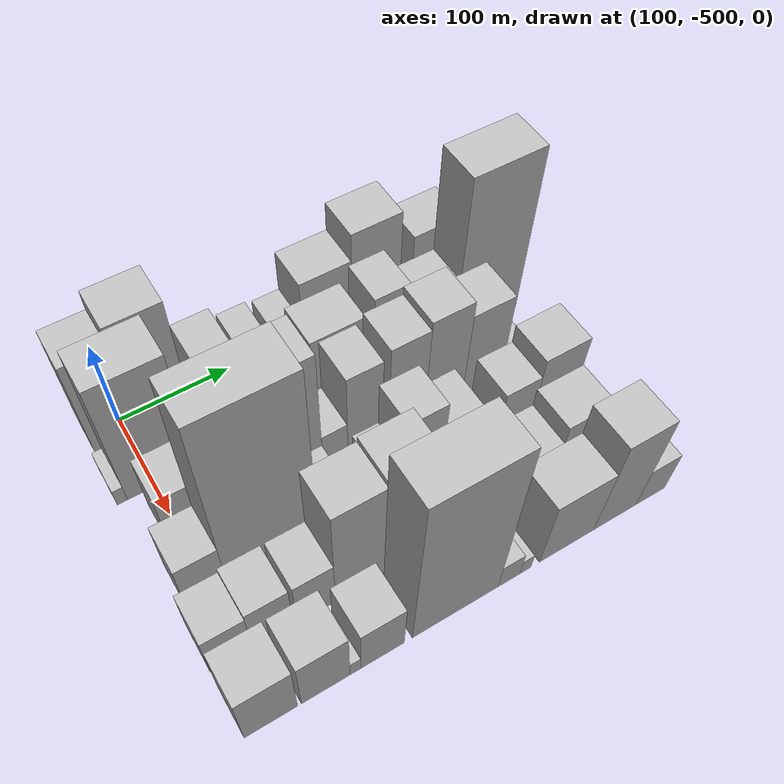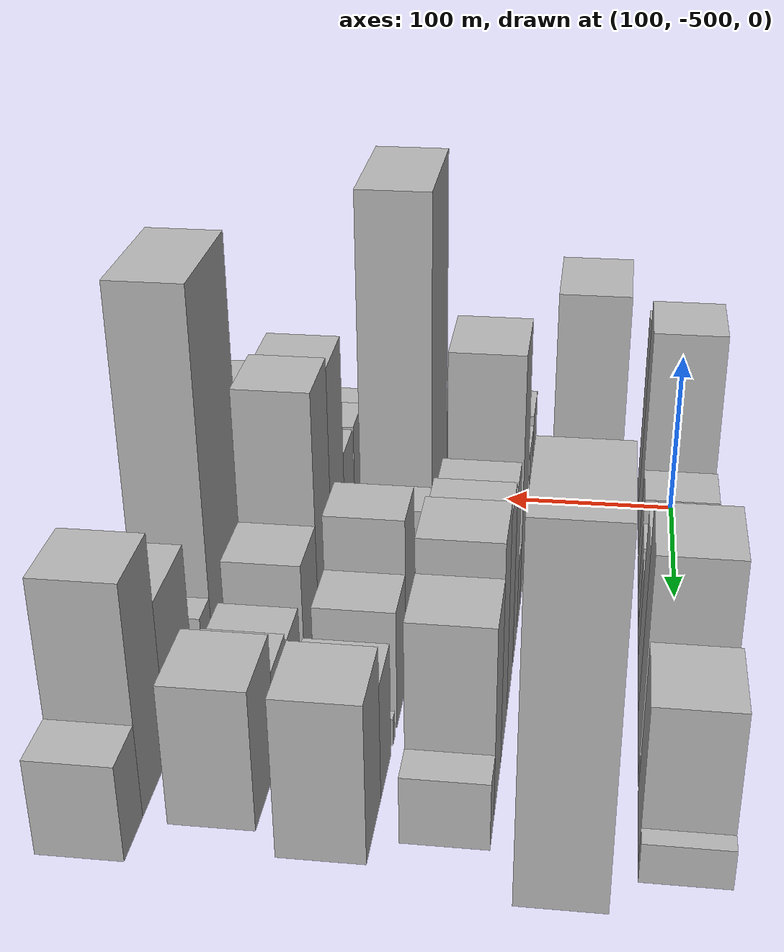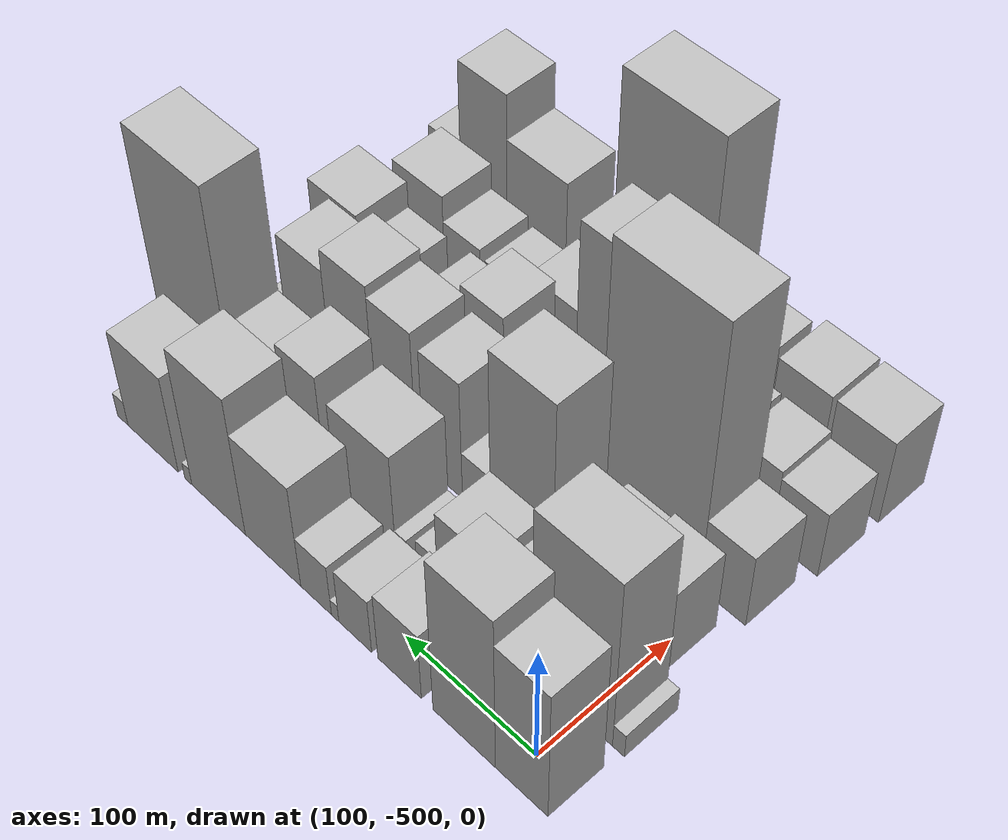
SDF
<sdf version="1.6">
 <world name="default">
  <model name="building_10">
   <static>1</static>
   <pose>100.0000 -509.3319 0 0.000000 0.000000 0.000000</pose>
   <link name="link">
    <pose>0 0 58.50 0 0 0</pose>
    <collision name="collision"><geometry><box><size>40.0000 38.4094 117.0000</size></box></geometry></collision>
    <visual name="visual">
     <cast_shadows>0</cast_shadows>
     <geometry><box><size>40.0000 38.4094 117.0000</size></box></geometry>
     <material>
      <script>
       <uri>model://HANNAS_wall/materials/scripts</uri>
       <uri>model://HANNAS_wall/materials/textures</uri>
       <name>vrc/HANNAS_wall</name>
      </script>
     </material>
    </visual>
   </link>
  </model>
  <model name="building_11">
   <static>1</static>
   <pose>100.0000 -466.4925 0 0.000000 0.000000 0.000000</pose>
   <link name="link">
    <pose>0 0 69.00 0 0 0</pose>
    <collision name="collision"><geometry><box><size>40.0000 47.2694 138.0000</size></box></geometry></collision>
    <visual name="visual">
     <cast_shadows>0</cast_shadows>
     <geometry><box><size>40.0000 47.2694 138.0000</size></box></geometry>
     <material>
      <script>
       <uri>model://HANNAS_wall/materials/scripts</uri>
       <uri>model://HANNAS_wall/materials/textures</uri>
       <name>vrc/HANNAS_wall</name>
      </script>
     </material>
    </visual>
   </link>
  </model>
  <model name="building_12">
   <static>1</static>
   <pose>100.0000 -416.6845 0 0.000000 0.000000 0.000000</pose>
   <link name="link">
    <pose>0 0 30.00 0 0 0</pose>
    <collision name="collision"><geometry><box><size>40.0000 34.3465 60.0000</size></box></geometry></collision>
    <visual name="visual">
     <cast_shadows>0</cast_shadows>
     <geometry><box><size>40.0000 34.3465 60.0000</size></box></geometry>
     <material>
      <script>
       <uri>model://HANNAS_wall/materials/scripts</uri>
       <uri>model://HANNAS_wall/materials/textures</uri>
       <name>vrc/HANNAS_wall</name>
      </script>
     </material>
    </visual>
   </link>
  </model>
  <model name="building_13">
   <static>1</static>
   <pose>100.0000 -381.1827 0 0.000000 0.000000 0.000000</pose>
   <link name="link">
    <pose>0 0 24.00 0 0 0</pose>
    <collision name="collision"><geometry><box><size>40.0000 26.6572 48.0000</size></box></geometry></collision>
    <visual name="visual">
     <cast_shadows>0</cast_shadows>
     <geometry><box><size>40.0000 26.6572 48.0000</size></box></geometry>
     <material>
      <script>
       <uri>model://HANNAS_wall/materials/scripts</uri>
       <uri>model://HANNAS_wall/materials/textures</uri>
       <name>vrc/HANNAS_wall</name>
      </script>
     </material>
    </visual>
   </link>
  </model>
  <model name="building_14">
   <static>1</static>
   <pose>100.0000 -364.8093 0 0.000000 0.000000 0.000000</pose>
   <link name="link">
    <pose>0 0 7.50 0 0 0</pose>
    <collision name="collision"><geometry><box><size>40.0000 6.0895 15.0000</size></box></geometry></collision>
    <visual name="visual">
     <cast_shadows>0</cast_shadows>
     <geometry><box><size>40.0000 6.0895 15.0000</size></box></geometry>
     <material>
      <script>
       <uri>model://HANNAS_wall/materials/scripts</uri>
       <uri>model://HANNAS_wall/materials/textures</uri>
       <name>vrc/HANNAS_wall</name>
      </script>
     </material>
    </visual>
   </link>
  </model>
  <model name="building_15">
   <static>1</static>
   <pose>100.0000 -348.9522 0 0.000000 0.000000 0.000000</pose>
   <link name="link">
    <pose>0 0 22.50 0 0 0</pose>
    <collision name="collision"><geometry><box><size>40.0000 25.6248 45.0000</size></box></geometry></collision>
    <visual name="visual">
     <cast_shadows>0</cast_shadows>
     <geometry><box><size>40.0000 25.6248 45.0000</size></box></geometry>
     <material>
      <script>
       <uri>model://HANNAS_wall/materials/scripts</uri>
       <uri>model://HANNAS_wall/materials/textures</uri>
       <name>vrc/HANNAS_wall</name>
      </script>
     </material>
    </visual>
   </link>
  </model>
  <model name="building_16">
   <static>1</static>
   <pose>100.0000 -312.2584 0 0.000000 0.000000 0.000000</pose>
   <link name="link">
    <pose>0 0 45.00 0 0 0</pose>
    <collision name="collision"><geometry><box><size>40.0000 47.7629 90.0000</size></box></geometry></collision>
    <visual name="visual">
     <cast_shadows>0</cast_shadows>
     <geometry><box><size>40.0000 47.7629 90.0000</size></box></geometry>
     <material>
      <script>
       <uri>model://HANNAS_wall/materials/scripts</uri>
       <uri>model://HANNAS_wall/materials/textures</uri>
       <name>vrc/HANNAS_wall</name>
      </script>
     </material>
    </visual>
   </link>
  </model>
  <model name="building_17">
   <static>1</static>
   <pose>100.0000 -264.4707 0 0.000000 0.000000 0.000000</pose>
   <link name="link">
    <pose>0 0 60.00 0 0 0</pose>
    <collision name="collision"><geometry><box><size>40.0000 47.8126 120.0000</size></box></geometry></collision>
    <visual name="visual">
     <cast_shadows>0</cast_shadows>
     <geometry><box><size>40.0000 47.8126 120.0000</size></box></geometry>
     <material>
      <script>
       <uri>model://HANNAS_wall/materials/scripts</uri>
       <uri>model://HANNAS_wall/materials/textures</uri>
       <name>vrc/HANNAS_wall</name>
      </script>
     </material>
    </visual>
   </link>
  </model>
  <model name="building_18">
   <static>1</static>
   <pose>100.0000 -237.3521 0 0.000000 0.000000 0.000000</pose>
   <link name="link">
    <pose>0 0 7.50 0 0 0</pose>
    <collision name="collision"><geometry><box><size>40.0000 6.4245 15.0000</size></box></geometry></collision>
    <visual name="visual">
     <cast_shadows>0</cast_shadows>
     <geometry><box><size>40.0000 6.4245 15.0000</size></box></geometry>
     <material>
      <script>
       <uri>model://HANNAS_wall/materials/scripts</uri>
       <uri>model://HANNAS_wall/materials/textures</uri>
       <name>vrc/HANNAS_wall</name>
      </script>
     </material>
    </visual>
   </link>
  </model>
  <model name="building_19">
   <static>1</static>
   <pose>100.0000 -204.6399 0 0.000000 0.000000 0.000000</pose>
   <link name="link">
    <pose>0 0 42.00 0 0 0</pose>
    <collision name="collision"><geometry><box><size>40.0000 46.9999 84.0000</size></box></geometry></collision>
    <visual name="visual">
     <cast_shadows>0</cast_shadows>
     <geometry><box><size>40.0000 46.9999 84.0000</size></box></geometry>
     <material>
      <script>
       <uri>model://HANNAS_wall/materials/scripts</uri>
       <uri>model://HANNAS_wall/materials/textures</uri>
       <name>vrc/HANNAS_wall</name>
      </script>
     </material>
    </visual>
   </link>
  </model>
  <model name="building_20">
   <static>1</static>
   <pose>100.0000 -176.0807 0 0.000000 0.000000 0.000000</pose>
   <link name="link">
    <pose>0 0 10.50 0 0 0</pose>
    <collision name="collision"><geometry><box><size>40.0000 10.1186 21.0000</size></box></geometry></collision>
    <visual name="visual">
     <cast_shadows>0</cast_shadows>
     <geometry><box><size>40.0000 10.1186 21.0000</size></box></geometry>
     <material>
      <script>
       <uri>model://HANNAS_wall/materials/scripts</uri>
       <uri>model://HANNAS_wall/materials/textures</uri>
       <name>vrc/HANNAS_wall</name>
      </script>
     </material>
    </visual>
   </link>
  </model>
  <model name="building_61">
   <static>1</static>
   <pose>152.0000 -527.4725 0 0.000000 0.000000 0.000000</pose>
   <link name="link">
    <pose>0 0 10.50 0 0 0</pose>
    <collision name="collision"><geometry><box><size>40.0000 8.6587 21.0000</size></box></geometry></collision>
    <visual name="visual">
     <cast_shadows>0</cast_shadows>
     <geometry><box><size>40.0000 8.6587 21.0000</size></box></geometry>
     <material>
      <script>
       <uri>model://HANNAS_wall/materials/scripts</uri>
       <uri>model://HANNAS_wall/materials/textures</uri>
       <name>vrc/HANNAS_wall</name>
      </script>
     </material>
    </visual>
   </link>
  </model>
  <model name="building_62">
   <static>1</static>
   <pose>152.0000 -493.3518 0 0.000000 0.000000 0.000000</pose>
   <link name="link">
    <pose>0 0 75.00 0 0 0</pose>
    <collision name="collision"><geometry><box><size>40.0000 59.5827 150.0000</size></box></geometry></collision>
    <visual name="visual">
     <cast_shadows>0</cast_shadows>
     <geometry><box><size>40.0000 59.5827 150.0000</size></box></geometry>
     <material>
      <script>
       <uri>model://HANNAS_wall/materials/scripts</uri>
       <uri>model://HANNAS_wall/materials/textures</uri>
       <name>vrc/HANNAS_wall</name>
      </script>
     </material>
    </visual>
   </link>
  </model>
  <model name="building_63">
   <static>1</static>
   <pose>152.0000 -447.5035 0 0.000000 0.000000 0.000000</pose>
   <link name="link">
    <pose>0 0 30.00 0 0 0</pose>
    <collision name="collision"><geometry><box><size>40.0000 32.1139 60.0000</size></box></geometry></collision>
    <visual name="visual">
     <cast_shadows>0</cast_shadows>
     <geometry><box><size>40.0000 32.1139 60.0000</size></box></geometry>
     <material>
      <script>
       <uri>model://HANNAS_wall/materials/scripts</uri>
       <uri>model://HANNAS_wall/materials/textures</uri>
       <name>vrc/HANNAS_wall</name>
      </script>
     </material>
    </visual>
   </link>
  </model>
  <model name="building_64">
   <static>1</static>
   <pose>152.0000 -410.9011 0 0.000000 0.000000 0.000000</pose>
   <link name="link">
    <pose>0 0 36.00 0 0 0</pose>
    <collision name="collision"><geometry><box><size>40.0000 41.0910 72.0000</size></box></geometry></collision>
    <visual name="visual">
     <cast_shadows>0</cast_shadows>
     <geometry><box><size>40.0000 41.0910 72.0000</size></box></geometry>
     <material>
      <script>
       <uri>model://HANNAS_wall/materials/scripts</uri>
       <uri>model://HANNAS_wall/materials/textures</uri>
       <name>vrc/HANNAS_wall</name>
      </script>
     </material>
    </visual>
   </link>
  </model>
  <model name="building_65">
   <static>1</static>
   <pose>152.0000 -381.8194 0 0.000000 0.000000 0.000000</pose>
   <link name="link">
    <pose>0 0 15.00 0 0 0</pose>
    <collision name="collision"><geometry><box><size>40.0000 17.0725 30.0000</size></box></geometry></collision>
    <visual name="visual">
     <cast_shadows>0</cast_shadows>
     <geometry><box><size>40.0000 17.0725 30.0000</size></box></geometry>
     <material>
      <script>
       <uri>model://HANNAS_wall/materials/scripts</uri>
       <uri>model://HANNAS_wall/materials/textures</uri>
       <name>vrc/HANNAS_wall</name>
      </script>
     </material>
    </visual>
   </link>
  </model>
  <model name="building_66">
   <static>1</static>
   <pose>152.0000 -360.5443 0 0.000000 0.000000 0.000000</pose>
   <link name="link">
    <pose>0 0 10.50 0 0 0</pose>
    <collision name="collision"><geometry><box><size>40.0000 9.4777 21.0000</size></box></geometry></collision>
    <visual name="visual">
     <cast_shadows>0</cast_shadows>
     <geometry><box><size>40.0000 9.4777 21.0000</size></box></geometry>
     <material>
      <script>
       <uri>model://HANNAS_wall/materials/scripts</uri>
       <uri>model://HANNAS_wall/materials/textures</uri>
       <name>vrc/HANNAS_wall</name>
      </script>
     </material>
    </visual>
   </link>
  </model>
  <model name="building_67">
   <static>1</static>
   <pose>152.0000 -330.9661 0 0.000000 0.000000 0.000000</pose>
   <link name="link">
    <pose>0 0 43.50 0 0 0</pose>
    <collision name="collision"><geometry><box><size>40.0000 49.6787 87.0000</size></box></geometry></collision>
    <visual name="visual">
     <cast_shadows>0</cast_shadows>
     <geometry><box><size>40.0000 49.6787 87.0000</size></box></geometry>
     <material>
      <script>
       <uri>model://HANNAS_wall/materials/scripts</uri>
       <uri>model://HANNAS_wall/materials/textures</uri>
       <name>vrc/HANNAS_wall</name>
      </script>
     </material>
    </visual>
   </link>
  </model>
  <model name="building_68">
   <static>1</static>
   <pose>152.0000 -281.6958 0 0.000000 0.000000 0.000000</pose>
   <link name="link">
    <pose>0 0 51.00 0 0 0</pose>
    <collision name="collision"><geometry><box><size>40.0000 32.8619 102.0000</size></box></geometry></collision>
    <visual name="visual">
     <cast_shadows>0</cast_shadows>
     <geometry><box><size>40.0000 32.8619 102.0000</size></box></geometry>
     <material>
      <script>
       <uri>model://HANNAS_wall/materials/scripts</uri>
       <uri>model://HANNAS_wall/materials/textures</uri>
       <name>vrc/HANNAS_wall</name>
      </script>
     </material>
    </visual>
   </link>
  </model>
  <model name="building_69">
   <static>1</static>
   <pose>152.0000 -238.5406 0 0.000000 0.000000 0.000000</pose>
   <link name="link">
    <pose>0 0 37.50 0 0 0</pose>
    <collision name="collision"><geometry><box><size>40.0000 43.4485 75.0000</size></box></geometry></collision>
    <visual name="visual">
     <cast_shadows>0</cast_shadows>
     <geometry><box><size>40.0000 43.4485 75.0000</size></box></geometry>
     <material>
      <script>
       <uri>model://HANNAS_wall/materials/scripts</uri>
       <uri>model://HANNAS_wall/materials/textures</uri>
       <name>vrc/HANNAS_wall</name>
      </script>
     </material>
    </visual>
   </link>
  </model>
  <model name="building_70">
   <static>1</static>
   <pose>152.0000 -183.7297 0 0.000000 0.000000 0.000000</pose>
   <link name="link">
    <pose>0 0 93.00 0 0 0</pose>
    <collision name="collision"><geometry><box><size>40.0000 66.1733 186.0000</size></box></geometry></collision>
    <visual name="visual">
     <cast_shadows>0</cast_shadows>
     <geometry><box><size>40.0000 66.1733 186.0000</size></box></geometry>
     <material>
      <script>
       <uri>model://HANNAS_wall/materials/scripts</uri>
       <uri>model://HANNAS_wall/materials/textures</uri>
       <name>vrc/HANNAS_wall</name>
      </script>
     </material>
    </visual>
   </link>
  </model>
  <model name="building_114">
   <static>1</static>
   <pose>204.0000 -493.3731 0 0.000000 0.000000 0.000000</pose>
   <link name="link">
    <pose>0 0 34.50 0 0 0</pose>
    <collision name="collision"><geometry><box><size>40.0000 35.5276 69.0000</size></box></geometry></collision>
    <visual name="visual">
     <cast_shadows>0</cast_shadows>
     <geometry><box><size>40.0000 35.5276 69.0000</size></box></geometry>
     <material>
      <script>
       <uri>model://HANNAS_wall/materials/scripts</uri>
       <uri>model://HANNAS_wall/materials/textures</uri>
       <name>vrc/HANNAS_wall</name>
      </script>
     </material>
    </visual>
   </link>
  </model>
  <model name="building_115">
   <static>1</static>
   <pose>204.0000 -458.9042 0 0.000000 0.000000 0.000000</pose>
   <link name="link">
    <pose>0 0 31.50 0 0 0</pose>
    <collision name="collision"><geometry><box><size>40.0000 33.4101 63.0000</size></box></geometry></collision>
    <visual name="visual">
     <cast_shadows>0</cast_shadows>
     <geometry><box><size>40.0000 33.4101 63.0000</size></box></geometry>
     <material>
      <script>
       <uri>model://HANNAS_wall/materials/scripts</uri>
       <uri>model://HANNAS_wall/materials/textures</uri>
       <name>vrc/HANNAS_wall</name>
      </script>
     </material>
    </visual>
   </link>
  </model>
  <model name="building_116">
   <static>1</static>
   <pose>204.0000 -429.9356 0 0.000000 0.000000 0.000000</pose>
   <link name="link">
    <pose>0 0 7.50 0 0 0</pose>
    <collision name="collision"><geometry><box><size>40.0000 6.5273 15.0000</size></box></geometry></collision>
    <visual name="visual">
     <cast_shadows>0</cast_shadows>
     <geometry><box><size>40.0000 6.5273 15.0000</size></box></geometry>
     <material>
      <script>
       <uri>model://HANNAS_wall/materials/scripts</uri>
       <uri>model://HANNAS_wall/materials/textures</uri>
       <name>vrc/HANNAS_wall</name>
      </script>
     </material>
    </visual>
   </link>
  </model>
  <model name="building_117">
   <static>1</static>
   <pose>204.0000 -401.9524 0 0.000000 0.000000 0.000000</pose>
   <link name="link">
    <pose>0 0 75.00 0 0 0</pose>
    <collision name="collision"><geometry><box><size>40.0000 49.4390 150.0000</size></box></geometry></collision>
    <visual name="visual">
     <cast_shadows>0</cast_shadows>
     <geometry><box><size>40.0000 49.4390 150.0000</size></box></geometry>
     <material>
      <script>
       <uri>model://HANNAS_wall/materials/scripts</uri>
       <uri>model://HANNAS_wall/materials/textures</uri>
       <name>vrc/HANNAS_wall</name>
      </script>
     </material>
    </visual>
   </link>
  </model>
  <model name="building_118">
   <static>1</static>
   <pose>204.0000 -365.7311 0 0.000000 0.000000 0.000000</pose>
   <link name="link">
    <pose>0 0 21.00 0 0 0</pose>
    <collision name="collision"><geometry><box><size>40.0000 23.0037 42.0000</size></box></geometry></collision>
    <visual name="visual">
     <cast_shadows>0</cast_shadows>
     <geometry><box><size>40.0000 23.0037 42.0000</size></box></geometry>
     <material>
      <script>
       <uri>model://HANNAS_wall/materials/scripts</uri>
       <uri>model://HANNAS_wall/materials/textures</uri>
       <name>vrc/HANNAS_wall</name>
      </script>
     </material>
    </visual>
   </link>
  </model>
  <model name="building_119">
   <static>1</static>
   <pose>204.0000 -338.1426 0 0.000000 0.000000 0.000000</pose>
   <link name="link">
    <pose>0 0 51.00 0 0 0</pose>
    <collision name="collision"><geometry><box><size>40.0000 32.1732 102.0000</size></box></geometry></collision>
    <visual name="visual">
     <cast_shadows>0</cast_shadows>
     <geometry><box><size>40.0000 32.1732 102.0000</size></box></geometry>
     <material>
      <script>
       <uri>model://HANNAS_wall/materials/scripts</uri>
       <uri>model://HANNAS_wall/materials/textures</uri>
       <name>vrc/HANNAS_wall</name>
      </script>
     </material>
    </visual>
   </link>
  </model>
  <model name="building_120">
   <static>1</static>
   <pose>204.0000 -298.5070 0 0.000000 0.000000 0.000000</pose>
   <link name="link">
    <pose>0 0 55.50 0 0 0</pose>
    <collision name="collision"><geometry><box><size>40.0000 35.0981 111.0000</size></box></geometry></collision>
    <visual name="visual">
     <cast_shadows>0</cast_shadows>
     <geometry><box><size>40.0000 35.0981 111.0000</size></box></geometry>
     <material>
      <script>
       <uri>model://HANNAS_wall/materials/scripts</uri>
       <uri>model://HANNAS_wall/materials/textures</uri>
       <name>vrc/HANNAS_wall</name>
      </script>
     </material>
    </visual>
   </link>
  </model>
  <model name="building_121">
   <static>1</static>
   <pose>204.0000 -261.9340 0 0.000000 0.000000 0.000000</pose>
   <link name="link">
    <pose>0 0 60.00 0 0 0</pose>
    <collision name="collision"><geometry><box><size>40.0000 38.0480 120.0000</size></box></geometry></collision>
    <visual name="visual">
     <cast_shadows>0</cast_shadows>
     <geometry><box><size>40.0000 38.0480 120.0000</size></box></geometry>
     <material>
      <script>
       <uri>model://HANNAS_wall/materials/scripts</uri>
       <uri>model://HANNAS_wall/materials/textures</uri>
       <name>vrc/HANNAS_wall</name>
      </script>
     </material>
    </visual>
   </link>
  </model>
  <model name="building_122">
   <static>1</static>
   <pose>204.0000 -223.1925 0 0.000000 0.000000 0.000000</pose>
   <link name="link">
    <pose>0 0 51.00 0 0 0</pose>
    <collision name="collision"><geometry><box><size>40.0000 39.4350 102.0000</size></box></geometry></collision>
    <visual name="visual">
     <cast_shadows>0</cast_shadows>
     <geometry><box><size>40.0000 39.4350 102.0000</size></box></geometry>
     <material>
      <script>
       <uri>model://HANNAS_wall/materials/scripts</uri>
       <uri>model://HANNAS_wall/materials/textures</uri>
       <name>vrc/HANNAS_wall</name>
      </script>
     </material>
    </visual>
   </link>
  </model>
  <model name="building_123">
   <static>1</static>
   <pose>204.0000 -193.3924 0 0.000000 0.000000 0.000000</pose>
   <link name="link">
    <pose>0 0 18.00 0 0 0</pose>
    <collision name="collision"><geometry><box><size>40.0000 20.1651 36.0000</size></box></geometry></collision>
    <visual name="visual">
     <cast_shadows>0</cast_shadows>
     <geometry><box><size>40.0000 20.1651 36.0000</size></box></geometry>
     <material>
      <script>
       <uri>model://HANNAS_wall/materials/scripts</uri>
       <uri>model://HANNAS_wall/materials/textures</uri>
       <name>vrc/HANNAS_wall</name>
      </script>
     </material>
    </visual>
   </link>
  </model>
  <model name="building_168">
   <static>1</static>
   <pose>256.0000 -505.0412 0 0.000000 0.000000 0.000000</pose>
   <link name="link">
    <pose>0 0 31.50 0 0 0</pose>
    <collision name="collision"><geometry><box><size>40.0000 33.5590 63.0000</size></box></geometry></collision>
    <visual name="visual">
     <cast_shadows>0</cast_shadows>
     <geometry><box><size>40.0000 33.5590 63.0000</size></box></geometry>
     <material>
      <script>
       <uri>model://HANNAS_wall/materials/scripts</uri>
       <uri>model://HANNAS_wall/materials/textures</uri>
       <name>vrc/HANNAS_wall</name>
      </script>
     </material>
    </visual>
   </link>
  </model>
  <model name="building_169">
   <static>1</static>
   <pose>256.0000 -449.4856 0 0.000000 0.000000 0.000000</pose>
   <link name="link">
    <pose>0 0 111.00 0 0 0</pose>
    <collision name="collision"><geometry><box><size>40.0000 77.5522 222.0000</size></box></geometry></collision>
    <visual name="visual">
     <cast_shadows>0</cast_shadows>
     <geometry><box><size>40.0000 77.5522 222.0000</size></box></geometry>
     <material>
      <script>
       <uri>model://HANNAS_wall/materials/scripts</uri>
       <uri>model://HANNAS_wall/materials/textures</uri>
       <name>vrc/HANNAS_wall</name>
      </script>
     </material>
    </visual>
   </link>
  </model>
  <model name="building_170">
   <static>1</static>
   <pose>256.0000 -396.9300 0 0.000000 0.000000 0.000000</pose>
   <link name="link">
    <pose>0 0 27.00 0 0 0</pose>
    <collision name="collision"><geometry><box><size>40.0000 27.5591 54.0000</size></box></geometry></collision>
    <visual name="visual">
     <cast_shadows>0</cast_shadows>
     <geometry><box><size>40.0000 27.5591 54.0000</size></box></geometry>
     <material>
      <script>
       <uri>model://HANNAS_wall/materials/scripts</uri>
       <uri>model://HANNAS_wall/materials/textures</uri>
       <name>vrc/HANNAS_wall</name>
      </script>
     </material>
    </visual>
   </link>
  </model>
  <model name="building_171">
   <static>1</static>
   <pose>256.0000 -365.5503 0 0.000000 0.000000 0.000000</pose>
   <link name="link">
    <pose>0 0 15.00 0 0 0</pose>
    <collision name="collision"><geometry><box><size>40.0000 17.2002 30.0000</size></box></geometry></collision>
    <visual name="visual">
     <cast_shadows>0</cast_shadows>
     <geometry><box><size>40.0000 17.2002 30.0000</size></box></geometry>
     <material>
      <script>
       <uri>model://HANNAS_wall/materials/scripts</uri>
       <uri>model://HANNAS_wall/materials/textures</uri>
       <name>vrc/HANNAS_wall</name>
      </script>
     </material>
    </visual>
   </link>
  </model>
  <model name="building_172">
   <static>1</static>
   <pose>256.0000 -345.3689 0 0.000000 0.000000 0.000000</pose>
   <link name="link">
    <pose>0 0 22.50 0 0 0</pose>
    <collision name="collision"><geometry><box><size>40.0000 23.1625 45.0000</size></box></geometry></collision>
    <visual name="visual">
     <cast_shadows>0</cast_shadows>
     <geometry><box><size>40.0000 23.1625 45.0000</size></box></geometry>
     <material>
      <script>
       <uri>model://HANNAS_wall/materials/scripts</uri>
       <uri>model://HANNAS_wall/materials/textures</uri>
       <name>vrc/HANNAS_wall</name>
      </script>
     </material>
    </visual>
   </link>
  </model>
  <model name="building_173">
   <static>1</static>
   <pose>256.0000 -316.4378 0 0.000000 0.000000 0.000000</pose>
   <link name="link">
    <pose>0 0 48.00 0 0 0</pose>
    <collision name="collision"><geometry><box><size>40.0000 34.6998 96.0000</size></box></geometry></collision>
    <visual name="visual">
     <cast_shadows>0</cast_shadows>
     <geometry><box><size>40.0000 34.6998 96.0000</size></box></geometry>
     <material>
      <script>
       <uri>model://HANNAS_wall/materials/scripts</uri>
       <uri>model://HANNAS_wall/materials/textures</uri>
       <name>vrc/HANNAS_wall</name>
      </script>
     </material>
    </visual>
   </link>
  </model>
  <model name="building_174">
   <static>1</static>
   <pose>256.0000 -281.9378 0 0.000000 0.000000 0.000000</pose>
   <link name="link">
    <pose>0 0 33.00 0 0 0</pose>
    <collision name="collision"><geometry><box><size>40.0000 34.3002 66.0000</size></box></geometry></collision>
    <visual name="visual">
     <cast_shadows>0</cast_shadows>
     <geometry><box><size>40.0000 34.3002 66.0000</size></box></geometry>
     <material>
      <script>
       <uri>model://HANNAS_wall/materials/scripts</uri>
       <uri>model://HANNAS_wall/materials/textures</uri>
       <name>vrc/HANNAS_wall</name>
      </script>
     </material>
    </visual>
   </link>
  </model>
  <model name="building_175">
   <static>1</static>
   <pose>256.0000 -254.3820 0 0.000000 0.000000 0.000000</pose>
   <link name="link">
    <pose>0 0 7.50 0 0 0</pose>
    <collision name="collision"><geometry><box><size>40.0000 6.8113 15.0000</size></box></geometry></collision>
    <visual name="visual">
     <cast_shadows>0</cast_shadows>
     <geometry><box><size>40.0000 6.8113 15.0000</size></box></geometry>
     <material>
      <script>
       <uri>model://HANNAS_wall/materials/scripts</uri>
       <uri>model://HANNAS_wall/materials/textures</uri>
       <name>vrc/HANNAS_wall</name>
      </script>
     </material>
    </visual>
   </link>
  </model>
  <model name="building_176">
   <static>1</static>
   <pose>256.0000 -227.2920 0 0.000000 0.000000 0.000000</pose>
   <link name="link">
    <pose>0 0 31.50 0 0 0</pose>
    <collision name="collision"><geometry><box><size>40.0000 33.3687 63.0000</size></box></geometry></collision>
    <visual name="visual">
     <cast_shadows>0</cast_shadows>
     <geometry><box><size>40.0000 33.3687 63.0000</size></box></geometry>
     <material>
      <script>
       <uri>model://HANNAS_wall/materials/scripts</uri>
       <uri>model://HANNAS_wall/materials/textures</uri>
       <name>vrc/HANNAS_wall</name>
      </script>
     </material>
    </visual>
   </link>
  </model>
  <model name="building_177">
   <static>1</static>
   <pose>256.0000 -189.2890 0 0.000000 0.000000 0.000000</pose>
   <link name="link">
    <pose>0 0 42.00 0 0 0</pose>
    <collision name="collision"><geometry><box><size>40.0000 42.6374 84.0000</size></box></geometry></collision>
    <visual name="visual">
     <cast_shadows>0</cast_shadows>
     <geometry><box><size>40.0000 42.6374 84.0000</size></box></geometry>
     <material>
      <script>
       <uri>model://HANNAS_wall/materials/scripts</uri>
       <uri>model://HANNAS_wall/materials/textures</uri>
       <name>vrc/HANNAS_wall</name>
      </script>
     </material>
    </visual>
   </link>
  </model>
  <model name="building_215">
   <static>1</static>
   <pose>308.0000 -511.2736 0 0.000000 0.000000 0.000000</pose>
   <link name="link">
    <pose>0 0 28.50 0 0 0</pose>
    <collision name="collision"><geometry><box><size>40.0000 33.3550 57.0000</size></box></geometry></collision>
    <visual name="visual">
     <cast_shadows>0</cast_shadows>
     <geometry><box><size>40.0000 33.3550 57.0000</size></box></geometry>
     <material>
      <script>
       <uri>model://HANNAS_wall/materials/scripts</uri>
       <uri>model://HANNAS_wall/materials/textures</uri>
       <name>vrc/HANNAS_wall</name>
      </script>
     </material>
    </visual>
   </link>
  </model>
  <model name="building_216">
   <static>1</static>
   <pose>308.0000 -477.9343 0 0.000000 0.000000 0.000000</pose>
   <link name="link">
    <pose>0 0 31.50 0 0 0</pose>
    <collision name="collision"><geometry><box><size>40.0000 33.3236 63.0000</size></box></geometry></collision>
    <visual name="visual">
     <cast_shadows>0</cast_shadows>
     <geometry><box><size>40.0000 33.3236 63.0000</size></box></geometry>
     <material>
      <script>
       <uri>model://HANNAS_wall/materials/scripts</uri>
       <uri>model://HANNAS_wall/materials/textures</uri>
       <name>vrc/HANNAS_wall</name>
      </script>
     </material>
    </visual>
   </link>
  </model>
  <model name="building_217">
   <static>1</static>
   <pose>308.0000 -442.1924 0 0.000000 0.000000 0.000000</pose>
   <link name="link">
    <pose>0 0 31.50 0 0 0</pose>
    <collision name="collision"><geometry><box><size>40.0000 32.1601 63.0000</size></box></geometry></collision>
    <visual name="visual">
     <cast_shadows>0</cast_shadows>
     <geometry><box><size>40.0000 32.1601 63.0000</size></box></geometry>
     <material>
      <script>
       <uri>model://HANNAS_wall/materials/scripts</uri>
       <uri>model://HANNAS_wall/materials/textures</uri>
       <name>vrc/HANNAS_wall</name>
      </script>
     </material>
    </visual>
   </link>
  </model>
  <model name="building_218">
   <static>1</static>
   <pose>308.0000 -404.7250 0 0.000000 0.000000 0.000000</pose>
   <link name="link">
    <pose>0 0 67.50 0 0 0</pose>
    <collision name="collision"><geometry><box><size>40.0000 42.7748 135.0000</size></box></geometry></collision>
    <visual name="visual">
     <cast_shadows>0</cast_shadows>
     <geometry><box><size>40.0000 42.7748 135.0000</size></box></geometry>
     <material>
      <script>
       <uri>model://HANNAS_wall/materials/scripts</uri>
       <uri>model://HANNAS_wall/materials/textures</uri>
       <name>vrc/HANNAS_wall</name>
      </script>
     </material>
    </visual>
   </link>
  </model>
  <model name="building_219">
   <static>1</static>
   <pose>308.0000 -361.7406 0 0.000000 0.000000 0.000000</pose>
   <link name="link">
    <pose>0 0 70.50 0 0 0</pose>
    <collision name="collision"><geometry><box><size>40.0000 43.1941 141.0000</size></box></geometry></collision>
    <visual name="visual">
     <cast_shadows>0</cast_shadows>
     <geometry><box><size>40.0000 43.1941 141.0000</size></box></geometry>
     <material>
      <script>
       <uri>model://HANNAS_wall/materials/scripts</uri>
       <uri>model://HANNAS_wall/materials/textures</uri>
       <name>vrc/HANNAS_wall</name>
      </script>
     </material>
    </visual>
   </link>
  </model>
  <model name="building_220">
   <static>1</static>
   <pose>308.0000 -320.3464 0 0.000000 0.000000 0.000000</pose>
   <link name="link">
    <pose>0 0 33.00 0 0 0</pose>
    <collision name="collision"><geometry><box><size>40.0000 39.5942 66.0000</size></box></geometry></collision>
    <visual name="visual">
     <cast_shadows>0</cast_shadows>
     <geometry><box><size>40.0000 39.5942 66.0000</size></box></geometry>
     <material>
      <script>
       <uri>model://HANNAS_wall/materials/scripts</uri>
       <uri>model://HANNAS_wall/materials/textures</uri>
       <name>vrc/HANNAS_wall</name>
      </script>
     </material>
    </visual>
   </link>
  </model>
  <model name="building_221">
   <static>1</static>
   <pose>308.0000 -294.3157 0 0.000000 0.000000 0.000000</pose>
   <link name="link">
    <pose>0 0 7.50 0 0 0</pose>
    <collision name="collision"><geometry><box><size>40.0000 6.4672 15.0000</size></box></geometry></collision>
    <visual name="visual">
     <cast_shadows>0</cast_shadows>
     <geometry><box><size>40.0000 6.4672 15.0000</size></box></geometry>
     <material>
      <script>
       <uri>model://HANNAS_wall/materials/scripts</uri>
       <uri>model://HANNAS_wall/materials/textures</uri>
       <name>vrc/HANNAS_wall</name>
      </script>
     </material>
    </visual>
   </link>
  </model>
  <model name="building_222">
   <static>1</static>
   <pose>308.0000 -277.1600 0 0.000000 0.000000 0.000000</pose>
   <link name="link">
    <pose>0 0 24.00 0 0 0</pose>
    <collision name="collision"><geometry><box><size>40.0000 27.8442 48.0000</size></box></geometry></collision>
    <visual name="visual">
     <cast_shadows>0</cast_shadows>
     <geometry><box><size>40.0000 27.8442 48.0000</size></box></geometry>
     <material>
      <script>
       <uri>model://HANNAS_wall/materials/scripts</uri>
       <uri>model://HANNAS_wall/materials/textures</uri>
       <name>vrc/HANNAS_wall</name>
      </script>
     </material>
    </visual>
   </link>
  </model>
  <model name="building_223">
   <static>1</static>
   <pose>308.0000 -243.3223 0 0.000000 0.000000 0.000000</pose>
   <link name="link">
    <pose>0 0 27.00 0 0 0</pose>
    <collision name="collision"><geometry><box><size>40.0000 31.8313 54.0000</size></box></geometry></collision>
    <visual name="visual">
     <cast_shadows>0</cast_shadows>
     <geometry><box><size>40.0000 31.8313 54.0000</size></box></geometry>
     <material>
      <script>
       <uri>model://HANNAS_wall/materials/scripts</uri>
       <uri>model://HANNAS_wall/materials/textures</uri>
       <name>vrc/HANNAS_wall</name>
      </script>
     </material>
    </visual>
   </link>
  </model>
  <model name="building_224">
   <static>1</static>
   <pose>308.0000 -205.4859 0 0.000000 0.000000 0.000000</pose>
   <link name="link">
    <pose>0 0 37.50 0 0 0</pose>
    <collision name="collision"><geometry><box><size>40.0000 43.8414 75.0000</size></box></geometry></collision>
    <visual name="visual">
     <cast_shadows>0</cast_shadows>
     <geometry><box><size>40.0000 43.8414 75.0000</size></box></geometry>
     <material>
      <script>
       <uri>model://HANNAS_wall/materials/scripts</uri>
       <uri>model://HANNAS_wall/materials/textures</uri>
       <name>vrc/HANNAS_wall</name>
      </script>
     </material>
    </visual>
   </link>
  </model>
  <model name="building_264">
   <static>1</static>
   <pose>360.0000 -507.4526 0 0.000000 0.000000 0.000000</pose>
   <link name="link">
    <pose>0 0 36.00 0 0 0</pose>
    <collision name="collision"><geometry><box><size>40.0000 41.4382 72.0000</size></box></geometry></collision>
    <visual name="visual">
     <cast_shadows>0</cast_shadows>
     <geometry><box><size>40.0000 41.4382 72.0000</size></box></geometry>
     <material>
      <script>
       <uri>model://HANNAS_wall/materials/scripts</uri>
       <uri>model://HANNAS_wall/materials/textures</uri>
       <name>vrc/HANNAS_wall</name>
      </script>
     </material>
    </visual>
   </link>
  </model>
  <model name="building_265">
   <static>1</static>
   <pose>360.0000 -464.2916 0 0.000000 0.000000 0.000000</pose>
   <link name="link">
    <pose>0 0 36.00 0 0 0</pose>
    <collision name="collision"><geometry><box><size>40.0000 38.8839 72.0000</size></box></geometry></collision>
    <visual name="visual">
     <cast_shadows>0</cast_shadows>
     <geometry><box><size>40.0000 38.8839 72.0000</size></box></geometry>
     <material>
      <script>
       <uri>model://HANNAS_wall/materials/scripts</uri>
       <uri>model://HANNAS_wall/materials/textures</uri>
       <name>vrc/HANNAS_wall</name>
      </script>
     </material>
    </visual>
   </link>
  </model>
  <model name="building_266">
   <static>1</static>
   <pose>360.0000 -440.3603 0 0.000000 0.000000 0.000000</pose>
   <link name="link">
    <pose>0 0 10.50 0 0 0</pose>
    <collision name="collision"><geometry><box><size>40.0000 8.9785 21.0000</size></box></geometry></collision>
    <visual name="visual">
     <cast_shadows>0</cast_shadows>
     <geometry><box><size>40.0000 8.9785 21.0000</size></box></geometry>
     <material>
      <script>
       <uri>model://HANNAS_wall/materials/scripts</uri>
       <uri>model://HANNAS_wall/materials/textures</uri>
       <name>vrc/HANNAS_wall</name>
      </script>
     </material>
    </visual>
   </link>
  </model>
  <model name="building_267">
   <static>1</static>
   <pose>360.0000 -417.8117 0 0.000000 0.000000 0.000000</pose>
   <link name="link">
    <pose>0 0 31.50 0 0 0</pose>
    <collision name="collision"><geometry><box><size>40.0000 36.1188 63.0000</size></box></geometry></collision>
    <visual name="visual">
     <cast_shadows>0</cast_shadows>
     <geometry><box><size>40.0000 36.1188 63.0000</size></box></geometry>
     <material>
      <script>
       <uri>model://HANNAS_wall/materials/scripts</uri>
       <uri>model://HANNAS_wall/materials/textures</uri>
       <name>vrc/HANNAS_wall</name>
      </script>
     </material>
    </visual>
   </link>
  </model>
  <model name="building_268">
   <static>1</static>
   <pose>360.0000 -355.1345 0 0.000000 0.000000 0.000000</pose>
   <link name="link">
    <pose>0 0 102.00 0 0 0</pose>
    <collision name="collision"><geometry><box><size>40.0000 75.2356 204.0000</size></box></geometry></collision>
    <visual name="visual">
     <cast_shadows>0</cast_shadows>
     <geometry><box><size>40.0000 75.2356 204.0000</size></box></geometry>
     <material>
      <script>
       <uri>model://HANNAS_wall/materials/scripts</uri>
       <uri>model://HANNAS_wall/materials/textures</uri>
       <name>vrc/HANNAS_wall</name>
      </script>
     </material>
    </visual>
   </link>
  </model>
  <model name="building_269">
   <static>1</static>
   <pose>360.0000 -307.6784 0 0.000000 0.000000 0.000000</pose>
   <link name="link">
    <pose>0 0 16.50 0 0 0</pose>
    <collision name="collision"><geometry><box><size>40.0000 19.6766 33.0000</size></box></geometry></collision>
    <visual name="visual">
     <cast_shadows>0</cast_shadows>
     <geometry><box><size>40.0000 19.6766 33.0000</size></box></geometry>
     <material>
      <script>
       <uri>model://HANNAS_wall/materials/scripts</uri>
       <uri>model://HANNAS_wall/materials/textures</uri>
       <name>vrc/HANNAS_wall</name>
      </script>
     </material>
    </visual>
   </link>
  </model>
  <model name="building_270">
   <static>1</static>
   <pose>360.0000 -292.7053 0 0.000000 0.000000 0.000000</pose>
   <link name="link">
    <pose>0 0 10.50 0 0 0</pose>
    <collision name="collision"><geometry><box><size>40.0000 10.2696 21.0000</size></box></geometry></collision>
    <visual name="visual">
     <cast_shadows>0</cast_shadows>
     <geometry><box><size>40.0000 10.2696 21.0000</size></box></geometry>
     <material>
      <script>
       <uri>model://HANNAS_wall/materials/scripts</uri>
       <uri>model://HANNAS_wall/materials/textures</uri>
       <name>vrc/HANNAS_wall</name>
      </script>
     </material>
    </visual>
   </link>
  </model>
  <model name="building_271">
   <static>1</static>
   <pose>360.0000 -253.9409 0 0.000000 0.000000 0.000000</pose>
   <link name="link">
    <pose>0 0 43.50 0 0 0</pose>
    <collision name="collision"><geometry><box><size>40.0000 51.2593 87.0000</size></box></geometry></collision>
    <visual name="visual">
     <cast_shadows>0</cast_shadows>
     <geometry><box><size>40.0000 51.2593 87.0000</size></box></geometry>
     <material>
      <script>
       <uri>model://HANNAS_wall/materials/scripts</uri>
       <uri>model://HANNAS_wall/materials/textures</uri>
       <name>vrc/HANNAS_wall</name>
      </script>
     </material>
    </visual>
   </link>
  </model>
  <model name="building_272">
   <static>1</static>
   <pose>360.0000 -207.3884 0 0.000000 0.000000 0.000000</pose>
   <link name="link">
    <pose>0 0 61.50 0 0 0</pose>
    <collision name="collision"><geometry><box><size>40.0000 41.8455 123.0000</size></box></geometry></collision>
    <visual name="visual">
     <cast_shadows>0</cast_shadows>
     <geometry><box><size>40.0000 41.8455 123.0000</size></box></geometry>
     <material>
      <script>
       <uri>model://HANNAS_wall/materials/scripts</uri>
       <uri>model://HANNAS_wall/materials/textures</uri>
       <name>vrc/HANNAS_wall</name>
      </script>
     </material>
    </visual>
   </link>
  </model>
  <model name="building_273">
   <static>1</static>
   <pose>360.0000 -172.0146 0 0.000000 0.000000 0.000000</pose>
   <link name="link">
    <pose>0 0 25.50 0 0 0</pose>
    <collision name="collision"><geometry><box><size>40.0000 28.9021 51.0000</size></box></geometry></collision>
    <visual name="visual">
     <cast_shadows>0</cast_shadows>
     <geometry><box><size>40.0000 28.9021 51.0000</size></box></geometry>
     <material>
      <script>
       <uri>model://HANNAS_wall/materials/scripts</uri>
       <uri>model://HANNAS_wall/materials/textures</uri>
       <name>vrc/HANNAS_wall</name>
      </script>
     </material>
    </visual>
   </link>
  </model>
 </world>
</sdf>
